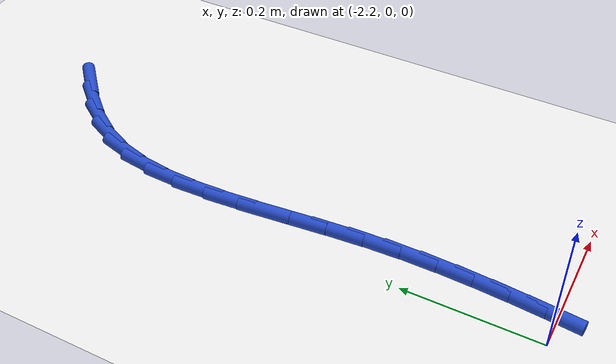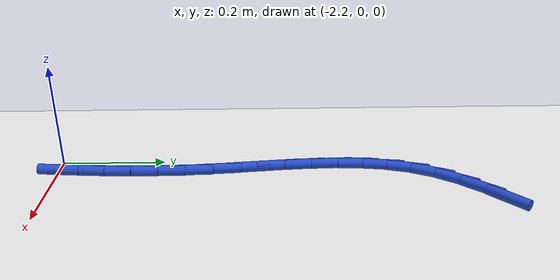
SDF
<sdf version="1.6">
 <world name="default">
  <model name="ground_plane">
   <static>1</static>
   <link name="link">
    <collision name="collision">
     <geometry><plane><normal>0 0 1</normal><size>100 100</size></plane></geometry>
     <surface><friction><ode><mu>100</mu><mu2>50</mu2></ode></friction></surface>
    </collision>
    <visual name="visual">
     <cast_shadows>0</cast_shadows>
     <geometry><plane><normal>0 0 1</normal><size>100 100</size></plane></geometry>
     <material>
      <script><uri>file://media/materials/scripts/gazebo.material</uri><name>Gazebo/WhiteGlow</name></script>
     </material>
    </visual>
   </link>
  </model>
  <model name="line">
   <link name="link_53">
    <pose>-2.033515660887343 0.8262217638978193 0.01 0 1.57 0.7407931043346598</pose>
    <collision name="collision">
     <geometry><cylinder><radius>0.01</radius><length>0.08</length></cylinder></geometry>
    </collision>
    <visual name="visual">
     <material>
      <script><name>Gazebo/Blue</name><uri>file://media/materials/scripts/gazebo.material</uri></script>
     </material>
     <geometry><cylinder><radius>0.01</radius><length>0.08</length></cylinder></geometry>
    </visual>
   </link>
   <link name="link_54">
    <pose>-2.0705652061984257 0.7923382901217476 0.01 0 1.57 0.8444130108672926</pose>
    <collision name="collision">
     <geometry><cylinder><radius>0.01</radius><length>0.08</length></cylinder></geometry>
    </collision>
    <visual name="visual">
     <material>
      <script><name>Gazebo/Blue</name><uri>file://media/materials/scripts/gazebo.material</uri></script>
     </material>
     <geometry><cylinder><radius>0.01</radius><length>0.08</length></cylinder></geometry>
    </visual>
   </link>
   <link name="link_55">
    <pose>-2.102706751865526 0.7561601833865226 0.01 0 1.57 0.9772136874753343</pose>
    <collision name="collision">
     <geometry><cylinder><radius>0.01</radius><length>0.08</length></cylinder></geometry>
    </collision>
    <visual name="visual">
     <material>
      <script><name>Gazebo/Blue</name><uri>file://media/materials/scripts/gazebo.material</uri></script>
     </material>
     <geometry><cylinder><radius>0.01</radius><length>0.08</length></cylinder></geometry>
    </visual>
   </link>
   <link name="link_56">
    <pose>-2.129012635188664 0.7171744636482156 0.01 0 1.57 1.1379415217152118</pose>
    <collision name="collision">
     <geometry><cylinder><radius>0.01</radius><length>0.08</length></cylinder></geometry>
    </collision>
    <visual name="visual">
     <material>
      <script><name>Gazebo/Blue</name><uri>file://media/materials/scripts/gazebo.material</uri></script>
     </material>
     <geometry><cylinder><radius>0.01</radius><length>0.08</length></cylinder></geometry>
    </visual>
   </link>
   <link name="link_57">
    <pose>-2.1485603280377905 0.6748708413036107 0.01 0 1.57 1.3036612683069253</pose>
    <collision name="collision">
     <geometry><cylinder><radius>0.01</radius><length>0.08</length></cylinder></geometry>
    </collision>
    <visual name="visual">
     <material>
      <script><name>Gazebo/Blue</name><uri>file://media/materials/scripts/gazebo.material</uri></script>
     </material>
     <geometry><cylinder><radius>0.01</radius><length>0.08</length></cylinder></geometry>
    </visual>
   </link>
   <link name="link_58">
    <pose>-2.161090415264759 0.6290864884041797 0.01 0 1.57 1.4369293011359263</pose>
    <collision name="collision">
     <geometry><cylinder><radius>0.01</radius><length>0.08</length></cylinder></geometry>
    </collision>
    <visual name="visual">
     <material>
      <script><name>Gazebo/Blue</name><uri>file://media/materials/scripts/gazebo.material</uri></script>
     </material>
     <geometry><cylinder><radius>0.01</radius><length>0.08</length></cylinder></geometry>
    </visual>
   </link>
   <link name="link_59">
    <pose>-2.1676544806320344 0.580345521554137 0.01 0 1.57 1.535511839931679</pose>
    <collision name="collision">
     <geometry><cylinder><radius>0.01</radius><length>0.08</length></cylinder></geometry>
    </collision>
    <visual name="visual">
     <material>
      <script><name>Gazebo/Blue</name><uri>file://media/materials/scripts/gazebo.material</uri></script>
     </material>
     <geometry><cylinder><radius>0.01</radius><length>0.08</length></cylinder></geometry>
    </visual>
   </link>
   <link name="link_60">
    <pose>-2.1694580130964303 0.529252701463535 0.01 0 1.57 -1.537660950106746</pose>
    <collision name="collision">
     <geometry><cylinder><radius>0.01</radius><length>0.08</length></cylinder></geometry>
    </collision>
    <visual name="visual">
     <material>
      <script><name>Gazebo/Blue</name><uri>file://media/materials/scripts/gazebo.material</uri></script>
     </material>
     <geometry><cylinder><radius>0.01</radius><length>0.08</length></cylinder></geometry>
    </visual>
   </link>
   <link name="link_61">
    <pose>-2.167706501614763 0.476412788842425 0.01 0 1.57 -1.4949713236045996</pose>
    <collision name="collision">
     <geometry><cylinder><radius>0.01</radius><length>0.08</length></cylinder></geometry>
    </collision>
    <visual name="visual">
     <material>
      <script><name>Gazebo/Blue</name><uri>file://media/materials/scripts/gazebo.material</uri></script>
     </material>
     <geometry><cylinder><radius>0.01</radius><length>0.08</length></cylinder></geometry>
    </visual>
   </link>
   <link name="link_62">
    <pose>-2.163605435143847 0.42243054440085975 0.01 0 1.57 -1.4748855197109165</pose>
    <collision name="collision">
     <geometry><cylinder><radius>0.01</radius><length>0.08</length></cylinder></geometry>
    </collision>
    <visual name="visual">
     <material>
      <script><name>Gazebo/Blue</name><uri>file://media/materials/scripts/gazebo.material</uri></script>
     </material>
     <geometry><cylinder><radius>0.01</radius><length>0.08</length></cylinder></geometry>
    </visual>
   </link>
   <link name="link_63">
    <pose>-2.1583603026404985 0.36791072884889015 0.01 0 1.57 -1.4758856568263394</pose>
    <collision name="collision">
     <geometry><cylinder><radius>0.01</radius><length>0.08</length></cylinder></geometry>
    </collision>
    <visual name="visual">
     <material>
      <script><name>Gazebo/Blue</name><uri>file://media/materials/scripts/gazebo.material</uri></script>
     </material>
     <geometry><cylinder><radius>0.01</radius><length>0.08</length></cylinder></geometry>
    </visual>
   </link>
   <link name="link_64">
    <pose>-2.153176593061532 0.31345810289656906 0.01 0 1.57 -1.4980943034781522</pose>
    <collision name="collision">
     <geometry><cylinder><radius>0.01</radius><length>0.08</length></cylinder></geometry>
    </collision>
    <visual name="visual">
     <material>
      <script><name>Gazebo/Blue</name><uri>file://media/materials/scripts/gazebo.material</uri></script>
     </material>
     <geometry><cylinder><radius>0.01</radius><length>0.08</length></cylinder></geometry>
    </visual>
   </link>
   <link name="link_65">
    <pose>-2.149259722980619 0.2596773896866823 0.01 0 1.57 -1.537405648284569</pose>
    <collision name="collision">
     <geometry><cylinder><radius>0.01</radius><length>0.08</length></cylinder></geometry>
    </collision>
    <visual name="visual">
     <material>
      <script><name>Gazebo/Blue</name><uri>file://media/materials/scripts/gazebo.material</uri></script>
     </material>
     <geometry><cylinder><radius>0.01</radius><length>0.08</length></cylinder></geometry>
    </visual>
   </link>
   <link name="link_66">
    <pose>-2.147500469662055 0.2070100127628016 0.01 0 1.57 1.5658890207305909</pose>
    <collision name="collision">
     <geometry><cylinder><radius>0.01</radius><length>0.08</length></cylinder></geometry>
    </collision>
    <visual name="visual">
     <material>
      <script><name>Gazebo/Blue</name><uri>file://media/materials/scripts/gazebo.material</uri></script>
     </material>
     <geometry><cylinder><radius>0.01</radius><length>0.08</length></cylinder></geometry>
    </visual>
   </link>
   <link name="link_67">
    <pose>-2.147753934735375 0.15535987409686777 0.01 0 1.57 1.5332741672964298</pose>
    <collision name="collision">
     <geometry><cylinder><radius>0.01</radius><length>0.08</length></cylinder></geometry>
    </collision>
    <visual name="visual">
     <material>
      <script><name>Gazebo/Blue</name><uri>file://media/materials/scripts/gazebo.material</uri></script>
     </material>
     <geometry><cylinder><radius>0.01</radius><length>0.08</length></cylinder></geometry>
    </visual>
   </link>
   <link name="link_68">
    <pose>-2.1496624358583176 0.10452043956374563 0.01 0 1.57 1.507065928960408</pose>
    <collision name="collision">
     <geometry><cylinder><radius>0.01</radius><length>0.08</length></cylinder></geometry>
    </collision>
    <visual name="visual">
     <material>
      <script><name>Gazebo/Blue</name><uri>file://media/materials/scripts/gazebo.material</uri></script>
     </material>
     <geometry><cylinder><radius>0.01</radius><length>0.08</length></cylinder></geometry>
    </visual>
   </link>
   <link name="link_69">
    <pose>-2.15286829068862 0.05428517503830164 0.01 0 1.57 1.4878067301467068</pose>
    <collision name="collision">
     <geometry><cylinder><radius>0.01</radius><length>0.08</length></cylinder></geometry>
    </collision>
    <visual name="visual">
     <material>
      <script><name>Gazebo/Blue</name><uri>file://media/materials/scripts/gazebo.material</uri></script>
     </material>
     <geometry><cylinder><radius>0.01</radius><length>0.08</length></cylinder></geometry>
    </visual>
   </link>
   <link name="link_70">
    <pose>-2.1570138168840223 0.004447546395400693 0.01 0 1.57 1.475859101177599</pose>
    <collision name="collision">
     <geometry><cylinder><radius>0.01</radius><length>0.08</length></cylinder></geometry>
    </collision>
    <visual name="visual">
     <material>
      <script><name>Gazebo/Blue</name><uri>file://media/materials/scripts/gazebo.material</uri></script>
     </material>
     <geometry><cylinder><radius>0.01</radius><length>0.08</length></cylinder></geometry>
    </visual>
   </link>
  </model>
 </world>
</sdf>
